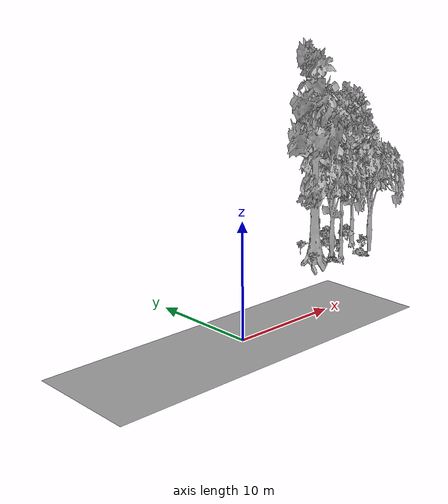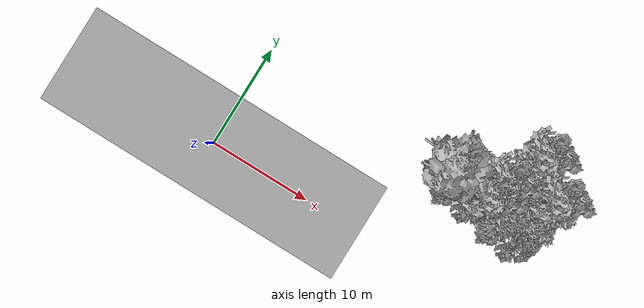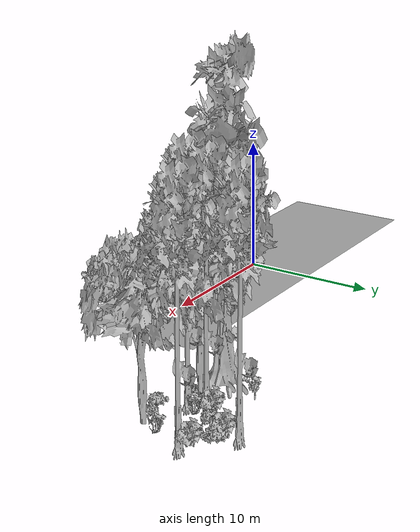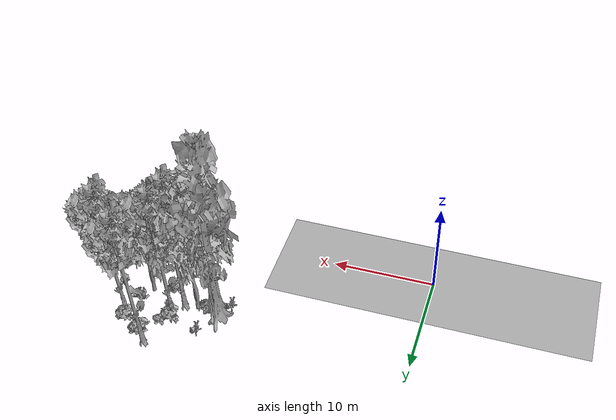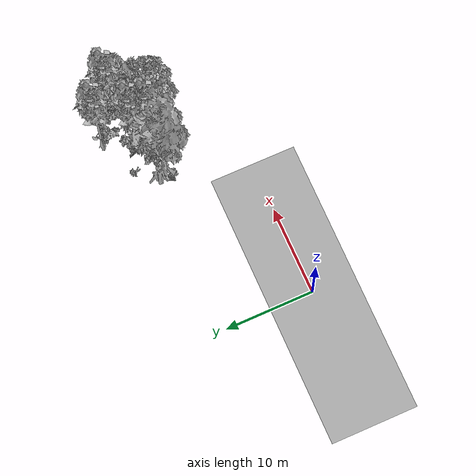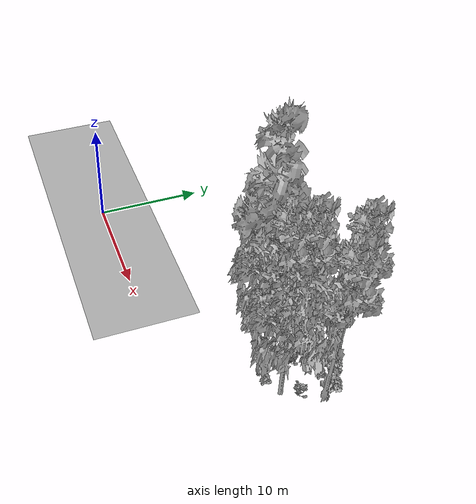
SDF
<sdf version="1.7">
 <world name="default">
  <model name="ground_plane">
   <static>1</static>
   <link name="link">
    <collision name="collision">
     <geometry><plane><normal>0 0 1</normal><size>100 100</size></plane></geometry>
     <surface><contact><ode><min_depth>0.01</min_depth><max_vel>0</max_vel></ode></contact></surface>
    </collision>
    <visual name="grass">
     <cast_shadows>0</cast_shadows>
     <geometry>
      <mesh>
       <scale>0.5814285714285714 0.18142857142857144 0.1</scale>
       <uri>file://grass_plane/meshes/grass_plane.dae</uri>
      </mesh>
     </geometry>
    </visual>
   </link>
  </model>
  <model name="Tree 43">
   <static>1</static>
   <pose>25.702679903582734 8.128113316298407 0 1.57079 -0 0</pose>
   <link name="link">
    <collision name="collision">
     <geometry><mesh><scale>3.5 5 3.5</scale><uri>model://tree_2/meshes/tree_2.obj</uri></mesh></geometry>
    </collision>
    <visual name="visual">
     <geometry><mesh><scale>3.5 5 3.5</scale><uri>model://tree_2/meshes/tree_2.obj</uri></mesh></geometry>
    </visual>
   </link>
  </model>
  <model name="Tree 96">
   <static>1</static>
   <pose>18.631826068333666 9.369276078838045 0 1.57079 -0 0</pose>
   <link name="link">
    <collision name="collision">
     <geometry><mesh><scale>3.5 5 3.5</scale><uri>model://tree_4/meshes/tree_4.obj</uri></mesh></geometry>
    </collision>
    <visual name="visual">
     <geometry><mesh><scale>3.5 5 3.5</scale><uri>model://tree_4/meshes/tree_4.obj</uri></mesh></geometry>
    </visual>
   </link>
  </model>
  <model name="Tree 142">
   <static>1</static>
   <pose>22.255577703423583 8.98551790705844 0 1.57079 -0 0</pose>
   <link name="link">
    <collision name="collision">
     <geometry><mesh><scale>3.5 5 3.5</scale><uri>model://tree_9/meshes/tree_9.obj</uri></mesh></geometry>
    </collision>
    <visual name="visual">
     <geometry><mesh><scale>3.5 5 3.5</scale><uri>model://tree_9/meshes/tree_9.obj</uri></mesh></geometry>
    </visual>
   </link>
  </model>
  <model name="Tree 208">
   <static>1</static>
   <pose>24.232630419723407 14.006717049980718 0 1.57079 -0 0</pose>
   <link name="link">
    <collision name="collision">
     <geometry><mesh><scale>3.5 5 3.5</scale><uri>model://tree_9/meshes/tree_9.obj</uri></mesh></geometry>
    </collision>
    <visual name="visual">
     <geometry><mesh><scale>3.5 5 3.5</scale><uri>model://tree_9/meshes/tree_9.obj</uri></mesh></geometry>
    </visual>
   </link>
  </model>
  <model name="Tree 288">
   <static>1</static>
   <pose>20.78010387046656 8.995589576697888 0 1.57079 -0 0</pose>
   <link name="link">
    <collision name="collision">
     <geometry><mesh><scale>3.5 5 3.5</scale><uri>model://tree_2/meshes/tree_2.obj</uri></mesh></geometry>
    </collision>
    <visual name="visual">
     <geometry><mesh><scale>3.5 5 3.5</scale><uri>model://tree_2/meshes/tree_2.obj</uri></mesh></geometry>
    </visual>
   </link>
  </model>
  <model name="Tree 403">
   <static>1</static>
   <pose>22.70439505730998 10.668289258791791 0 1.57079 -0 0</pose>
   <link name="link">
    <collision name="collision">
     <geometry><mesh><scale>3.5 5 3.5</scale><uri>model://tree_9/meshes/tree_9.obj</uri></mesh></geometry>
    </collision>
    <visual name="visual">
     <geometry><mesh><scale>3.5 5 3.5</scale><uri>model://tree_9/meshes/tree_9.obj</uri></mesh></geometry>
    </visual>
   </link>
  </model>
  <model name="Tree 423">
   <static>1</static>
   <pose>26.99957209397695 11.583596013592995 0 1.57079 -0 0</pose>
   <link name="link">
    <collision name="collision">
     <geometry><mesh><scale>3.5 5 3.5</scale><uri>model://tree_9/meshes/tree_9.obj</uri></mesh></geometry>
    </collision>
    <visual name="visual">
     <geometry><mesh><scale>3.5 5 3.5</scale><uri>model://tree_9/meshes/tree_9.obj</uri></mesh></geometry>
    </visual>
   </link>
  </model>
  <model name="Bush 7">
   <static>1</static>
   <pose>17.598135796631553 8.687421064013378 0 1.57079 -0 0</pose>
   <link name="link">
    <collision name="collision">
     <geometry><mesh><scale>2 2 2</scale><uri>model://bush_5/meshes/bush_5.obj</uri></mesh></geometry>
     <surface><contact><collide_without_contact>false</collide_without_contact></contact></surface>
    </collision>
    <visual name="visual">
     <geometry><mesh><scale>2 2 2</scale><uri>model://bush_5/meshes/bush_5.obj</uri></mesh></geometry>
    </visual>
   </link>
  </model>
  <model name="Bush 49">
   <static>1</static>
   <pose>23.643575865565467 7.626960901699743 0 1.57079 -0 0</pose>
   <link name="link">
    <collision name="collision">
     <geometry><mesh><scale>2 2 2</scale><uri>model://bush_3/meshes/bush_3.obj</uri></mesh></geometry>
     <surface><contact><collide_without_contact>false</collide_without_contact></contact></surface>
    </collision>
    <visual name="visual">
     <geometry><mesh><scale>2 2 2</scale><uri>model://bush_3/meshes/bush_3.obj</uri></mesh></geometry>
    </visual>
   </link>
  </model>
  <model name="Bush 57">
   <static>1</static>
   <pose>25.11695442844379 12.125044707566634 0 1.57079 -0 0</pose>
   <link name="link">
    <collision name="collision">
     <geometry><mesh><scale>2 2 2</scale><uri>model://bush_2/meshes/bush_2.obj</uri></mesh></geometry>
     <surface><contact><collide_without_contact>false</collide_without_contact></contact></surface>
    </collision>
    <visual name="visual">
     <geometry><mesh><scale>2 2 2</scale><uri>model://bush_2/meshes/bush_2.obj</uri></mesh></geometry>
    </visual>
   </link>
  </model>
  <model name="Bush 95">
   <static>1</static>
   <pose>19.69902112011171 12.276908030949851 0 1.57079 -0 0</pose>
   <link name="link">
    <collision name="collision">
     <geometry><mesh><scale>2 2 2</scale><uri>model://bush_5/meshes/bush_5.obj</uri></mesh></geometry>
     <surface><contact><collide_without_contact>false</collide_without_contact></contact></surface>
    </collision>
    <visual name="visual">
     <geometry><mesh><scale>2 2 2</scale><uri>model://bush_5/meshes/bush_5.obj</uri></mesh></geometry>
    </visual>
   </link>
  </model>
  <model name="Bush 106">
   <static>1</static>
   <pose>24.19382393919443 7.504959594590574 0 1.57079 -0 0</pose>
   <link name="link">
    <collision name="collision">
     <geometry><mesh><scale>2 2 2</scale><uri>model://bush_2/meshes/bush_2.obj</uri></mesh></geometry>
     <surface><contact><collide_without_contact>false</collide_without_contact></contact></surface>
    </collision>
    <visual name="visual">
     <geometry><mesh><scale>2 2 2</scale><uri>model://bush_2/meshes/bush_2.obj</uri></mesh></geometry>
    </visual>
   </link>
  </model>
  <model name="Bush 138">
   <static>1</static>
   <pose>20.49300867855476 8.719781277870496 0 1.57079 -0 0</pose>
   <link name="link">
    <collision name="collision">
     <geometry><mesh><scale>2 2 2</scale><uri>model://bush_2/meshes/bush_2.obj</uri></mesh></geometry>
     <surface><contact><collide_without_contact>false</collide_without_contact></contact></surface>
    </collision>
    <visual name="visual">
     <geometry><mesh><scale>2 2 2</scale><uri>model://bush_2/meshes/bush_2.obj</uri></mesh></geometry>
    </visual>
   </link>
  </model>
  <model name="Bush 183">
   <static>1</static>
   <pose>23.742442757976875 11.627549971634064 0 1.57079 -0 0</pose>
   <link name="link">
    <collision name="collision">
     <geometry><mesh><scale>2 2 2</scale><uri>model://bush_3/meshes/bush_3.obj</uri></mesh></geometry>
     <surface><contact><collide_without_contact>false</collide_without_contact></contact></surface>
    </collision>
    <visual name="visual">
     <geometry><mesh><scale>2 2 2</scale><uri>model://bush_3/meshes/bush_3.obj</uri></mesh></geometry>
    </visual>
   </link>
  </model>
  <model name="Bush 191">
   <static>1</static>
   <pose>26.356277603134274 9.475594592774975 0 1.57079 -0 0</pose>
   <link name="link">
    <collision name="collision">
     <geometry><mesh><scale>2 2 2</scale><uri>model://bush_4/meshes/bush_4.obj</uri></mesh></geometry>
     <surface><contact><collide_without_contact>false</collide_without_contact></contact></surface>
    </collision>
    <visual name="visual">
     <geometry><mesh><scale>2 2 2</scale><uri>model://bush_4/meshes/bush_4.obj</uri></mesh></geometry>
    </visual>
   </link>
  </model>
  <model name="Bush 217">
   <static>1</static>
   <pose>23.22226481000702 10.151085025336542 0 1.57079 -0 0</pose>
   <link name="link">
    <collision name="collision">
     <geometry><mesh><scale>2 2 2</scale><uri>model://bush_4/meshes/bush_4.obj</uri></mesh></geometry>
     <surface><contact><collide_without_contact>false</collide_without_contact></contact></surface>
    </collision>
    <visual name="visual">
     <geometry><mesh><scale>2 2 2</scale><uri>model://bush_4/meshes/bush_4.obj</uri></mesh></geometry>
    </visual>
   </link>
  </model>
  <model name="Bush 250">
   <static>1</static>
   <pose>20.394303442094127 8.441881570942705 0 1.57079 -0 0</pose>
   <link name="link">
    <collision name="collision">
     <geometry><mesh><scale>2 2 2</scale><uri>model://bush_2/meshes/bush_2.obj</uri></mesh></geometry>
     <surface><contact><collide_without_contact>false</collide_without_contact></contact></surface>
    </collision>
    <visual name="visual">
     <geometry><mesh><scale>2 2 2</scale><uri>model://bush_2/meshes/bush_2.obj</uri></mesh></geometry>
    </visual>
   </link>
  </model>
  <model name="Bush 258">
   <static>1</static>
   <pose>25.500603252261286 13.285074565842613 0 1.57079 -0 0</pose>
   <link name="link">
    <collision name="collision">
     <geometry><mesh><scale>2 2 2</scale><uri>model://bush_3/meshes/bush_3.obj</uri></mesh></geometry>
     <surface><contact><collide_without_contact>false</collide_without_contact></contact></surface>
    </collision>
    <visual name="visual">
     <geometry><mesh><scale>2 2 2</scale><uri>model://bush_3/meshes/bush_3.obj</uri></mesh></geometry>
    </visual>
   </link>
  </model>
  <model name="Bush 280">
   <static>1</static>
   <pose>24.84463442594722 13.067664871634737 0 1.57079 -0 0</pose>
   <link name="link">
    <collision name="collision">
     <geometry><mesh><scale>2 2 2</scale><uri>model://bush_1/meshes/bush_1.obj</uri></mesh></geometry>
     <surface><contact><collide_without_contact>false</collide_without_contact></contact></surface>
    </collision>
    <visual name="visual">
     <geometry><mesh><scale>2 2 2</scale><uri>model://bush_1/meshes/bush_1.obj</uri></mesh></geometry>
    </visual>
   </link>
  </model>
  <model name="Bush 293">
   <static>1</static>
   <pose>26.800806130583297 12.00880353885509 0 1.57079 -0 0</pose>
   <link name="link">
    <collision name="collision">
     <geometry><mesh><scale>2 2 2</scale><uri>model://bush_1/meshes/bush_1.obj</uri></mesh></geometry>
     <surface><contact><collide_without_contact>false</collide_without_contact></contact></surface>
    </collision>
    <visual name="visual">
     <geometry><mesh><scale>2 2 2</scale><uri>model://bush_1/meshes/bush_1.obj</uri></mesh></geometry>
    </visual>
   </link>
  </model>
  <model name="Bush 329">
   <static>1</static>
   <pose>22.720766479582196 10.89084853504577 0 1.57079 -0 0</pose>
   <link name="link">
    <collision name="collision">
     <geometry><mesh><scale>2 2 2</scale><uri>model://bush_1/meshes/bush_1.obj</uri></mesh></geometry>
     <surface><contact><collide_without_contact>false</collide_without_contact></contact></surface>
    </collision>
    <visual name="visual">
     <geometry><mesh><scale>2 2 2</scale><uri>model://bush_1/meshes/bush_1.obj</uri></mesh></geometry>
    </visual>
   </link>
  </model>
 </world>
</sdf>
